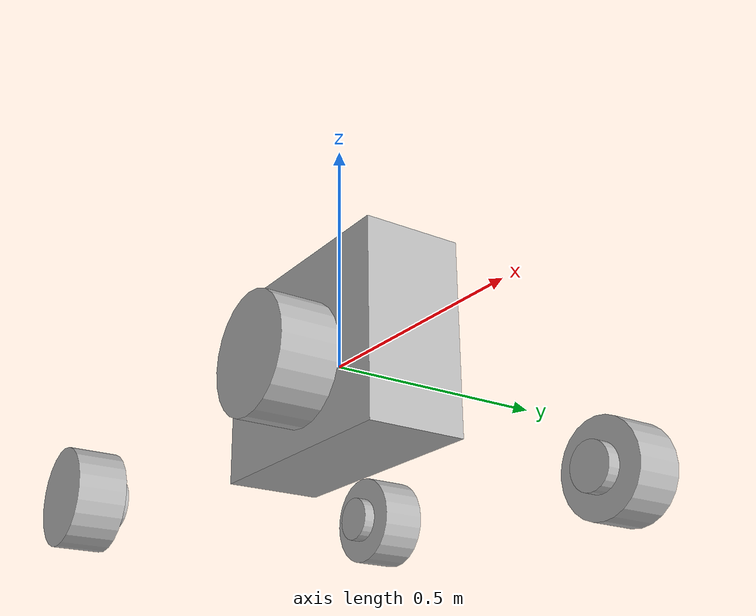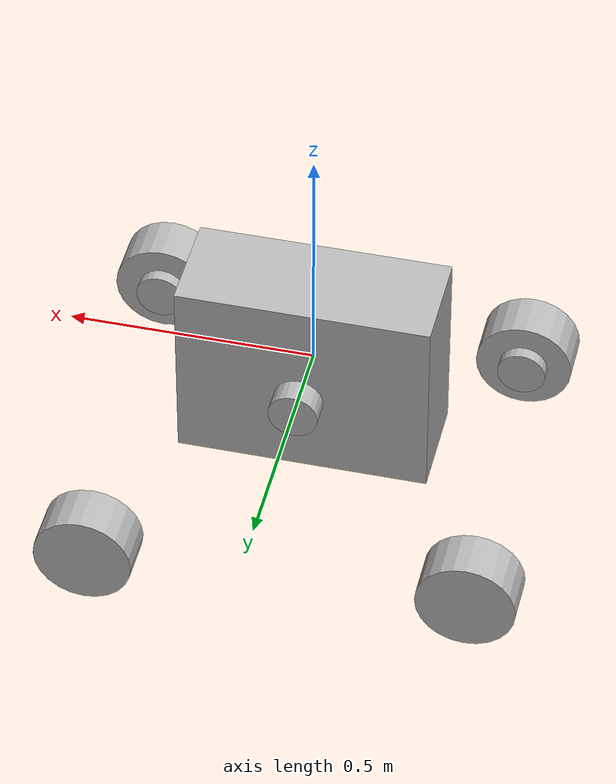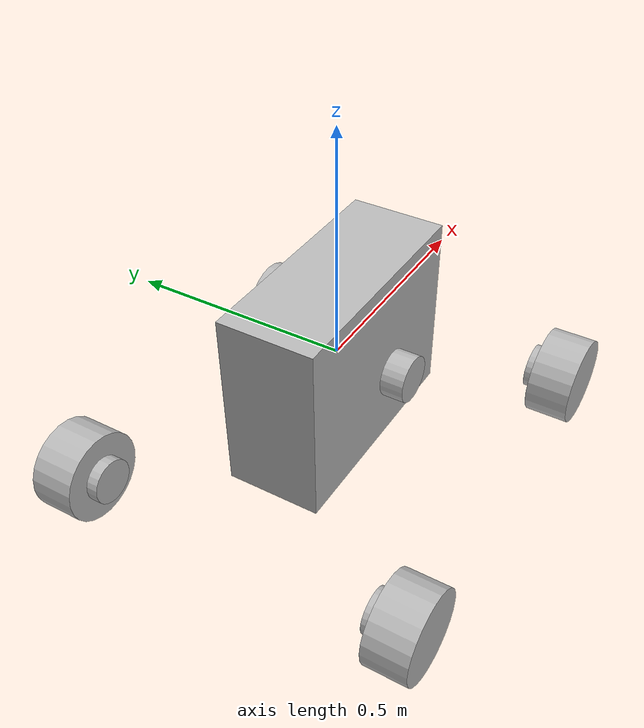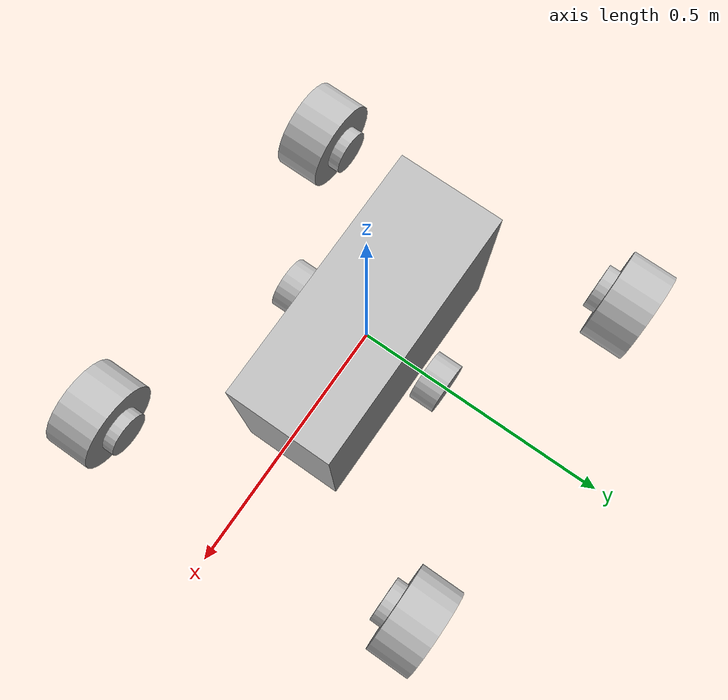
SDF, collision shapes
<sdf version='1.6'>
  <model name='plasticRover'>
    <link name='link_chassis'>
      <pose frame=''>0 0 0 0 -0 0</pose>
      <inertial>
        <pose frame=''>-0 0 0 0 -0 0</pose>
        <mass>3.32348</mass>
        <inertia>
          <ixx>0.0979082</ixx>
          <ixy>0.0003601</ixy>
          <ixz>-2.478e-05</ixz>
          <iyy>0.123</iyy>
          <iyz>3.66135e-05</iyz>
          <izz>0.115466</izz>
        </inertia>
      </inertial>
      <collision name='link_chassis_collision'>
        <pose frame=''>0 0 0 1.5708 -0 0</pose>
        <geometry>
          <box>
            <size>0.511 0.4 0.208</size>
          </box>
        </geometry>
      </collision>
      <collision name='link_chassis_fixed_joint_lump__link_left_bogie_stat_collision_collision_1'>
        <pose frame=''>0 0.15516 0 -1.5708 0 0</pose>
        <geometry>
          <cylinder>
            <length>0.05</length>
            <radius>0.05</radius>
          </cylinder>
        </geometry>
      </collision>
      <collision name='link_chassis_fixed_joint_lump__link_right_bogie_stat_collision_collision_2'>
        <pose frame=''>0 -0.15516 0 1.5708 -0 0</pose>
        <geometry>
          <cylinder>
            <length>0.05</length>
            <radius>0.05</radius>
          </cylinder>
        </geometry>
      </collision>
      <visual name='link_chassis_visual'>
        <pose frame=''>0 0 0 1.5708 -0 0</pose>
        <geometry>
          <box>
            <size>0.511 0.208 0.4</size>
          </box>
        </geometry>
      </visual>
      <visual name='link_chassis_fixed_joint_lump__camera_link_visual_1'>
        <pose frame=''>0.2555 0 0 0 -0 0</pose>
        <geometry>
          <box>
            <size>0.1 0.1 0.1</size>
          </box>
        </geometry>
        <material>
          <script>
            <uri>__default__</uri>
            <name>__default__</name>
          </script>
        </material>
      </visual>
      <visual name='link_chassis_fixed_joint_lump__link_left_bogie_stat_visual_visual_2'>
        <pose frame=''>0 0.15516 0 -1.5708 0 0</pose>
        <geometry>
          <cylinder>
            <length>0.05</length>
            <radius>0.05</radius>
          </cylinder>
        </geometry>
      </visual>
      <visual name='link_chassis_fixed_joint_lump__link_right_bogie_stat_visual_visual_3'>
        <pose frame=''>0 -0.15516 0 1.5708 -0 0</pose>
        <geometry>
          <cylinder>
            <length>0.05</length>
            <radius>0.05</radius>
          </cylinder>
        </geometry>
      </visual>
      <visual name='link_chassis_fixed_joint_lump__lidar_link_visual_4'>
        <pose frame=''>0.2275 0 0.104 0 -0 0</pose>
        <geometry>
          <box>
            <size>0.05 0.05 0.1</size>
          </box>
        </geometry>
        <material>
          <script>
            <uri>__default__</uri>
            <name>__default__</name>
          </script>
        </material>
      </visual>
      <velocity_decay/>
      <sensor name='camera1' type='camera'>
        <update_rate>30</update_rate>
        <camera name='head'>
          <horizontal_fov>1.39626</horizontal_fov>
          <image>
            <width>800</width>
            <height>800</height>
            <format>R8G8B8</format>
          </image>
          <clip>
            <near>0.02</near>
            <far>300</far>
          </clip>
          <noise>
            <type>gaussian</type>
            <mean>0</mean>
            <stddev>0.007</stddev>
          </noise>
        </camera>
        <plugin name='camera_controller' filename='libgazebo_ros_camera.so'>
          <alwaysOn>1</alwaysOn>
          <updateRate>0.0</updateRate>
          <cameraName>rover/camera1</cameraName>
          <imageTopicName>image_raw</imageTopicName>
          <cameraInfoTopicName>camera_info</cameraInfoTopicName>
          <frameName>camera_link</frameName>
          <hackBaseline>0.07</hackBaseline>
          <distortionK1>0.0</distortionK1>
          <distortionK2>0.0</distortionK2>
          <distortionK3>0.0</distortionK3>
          <distortionT1>0.0</distortionT1>
          <distortionT2>0.0</distortionT2>
        </plugin>
        <pose frame=''>0.2555 0 0 0 -0 0</pose>
      </sensor>
      <gravity>1</gravity>
      <velocity_decay/>
      <sensor name='head_hokuyo_sensor' type='ray'>
        <visualize>0</visualize>
        <update_rate>40</update_rate>
        <ray>
          <scan>
            <horizontal>
              <samples>720</samples>
              <resolution>1</resolution>
              <min_angle>-1.5708</min_angle>
              <max_angle>1.5708</max_angle>
            </horizontal>
          </scan>
          <range>
            <min>0.1</min>
            <max>30</max>
            <resolution>0.01</resolution>
          </range>
          <noise>
            <type>gaussian</type>
            <mean>0</mean>
            <stddev>0.01</stddev>
          </noise>
        </ray>
        <plugin name='gazebo_ros_head_hokuyo_controller' filename='libgazebo_ros_laser.so'>
          <topicName>/rover/laser/scan</topicName>
          <frameName>lidar_link</frameName>
        </plugin>
        <pose frame=''>0.2275 0 0.104 0 -0 0</pose>
      </sensor>
    </link>
    <link name='link_left_bogie_rot'>
      <pose frame=''>0 0.15516 0 1.5708 3e-06 3.14159</pose>
      <inertial>
        <pose frame=''>0.010327 -0.188386 0.161131 0 -0 0</pose>
        <mass>3.66525</mass>
        <inertia>
          <ixx>0.034829</ixx>
          <ixy>-0.0301798</ixy>
          <ixz>-0.00059891</ixz>
          <iyy>0.463453</iyy>
          <iyz>0.0106502</iyz>
          <izz>0.48004</izz>
        </inertia>
      </inertial>
      <collision name='link_left_bogie_rot_fixed_joint_lump__link_BLSWheel_collision_collision'>
        <pose frame=''>0.4006 -0.193183 0.17 0 0 -1.5708</pose>
        <geometry>
          <cylinder>
            <length>0.05</length>
            <radius>0.05</radius>
          </cylinder>
        </geometry>
      </collision>
      <collision name='link_left_bogie_rot_fixed_joint_lump__link_FLSWheel_collision_collision_1'>
        <pose frame=''>-0.37 -0.247057 0.17 0 0 -1.5708</pose>
        <geometry>
          <cylinder>
            <length>0.05</length>
            <radius>0.05</radius>
          </cylinder>
        </geometry>
      </collision>
      <visual name='link_left_bogie_rot_visual_visual'>
        <pose frame=''>0 0 0 0 -0 0</pose>
        <geometry>
          <mesh>
            <scale>0.001 0.001 0.001</scale>
            <uri>model://threedrover_description/MODELS/OWR_20_BOGIE_00_ASM_ROT.stl</uri>
          </mesh>
        </geometry>
      </visual>
      <visual name='link_left_bogie_rot_fixed_joint_lump__link_BLSWheel_visual_visual_1'>
        <pose frame=''>0.4006 -0.193183 0.17 0 0 -1.5708</pose>
        <geometry>
          <cylinder>
            <length>0.05</length>
            <radius>0.05</radius>
          </cylinder>
        </geometry>
      </visual>
      <visual name='link_left_bogie_rot_fixed_joint_lump__link_FLSWheel_visual_visual_2'>
        <pose frame=''>-0.37 -0.247057 0.17 0 0 -1.5708</pose>
        <geometry>
          <cylinder>
            <length>0.05</length>
            <radius>0.05</radius>
          </cylinder>
        </geometry>
      </visual>
    </link>
    <joint name='joint_bogie_left_rot' type='revolute'>
      <child>link_left_bogie_rot</child>
      <parent>link_right_bogie_rot</parent>
      <axis>
        <xyz>0 1 0</xyz>
        <limit>
          <lower>-1e+16</lower>
          <upper>1e+16</upper>
        </limit>
        <dynamics>
          <spring_reference>0</spring_reference>
          <spring_stiffness>0</spring_stiffness>
        </dynamics>
        <use_parent_model_frame>1</use_parent_model_frame>
      </axis>
    </joint>
    <link name='link_BLRWheel'>
      <pose frame=''>-0.400599 0.37516 -0.193184 -1.5708 -2e-06 -0</pose>
      <inertial>
        <pose frame=''>-0.003 -0.003 0.026 0 -0 0</pose>
        <mass>6.598</mass>
        <inertia>
          <ixx>0.031</ixx>
          <ixy>2.489e-07</ixy>
          <ixz>-1.24e-09</ixz>
          <iyy>0.031</iyy>
          <iyz>1.531e-08</iyz>
          <izz>0.051</izz>
        </inertia>
      </inertial>
      <collision name='link_BLRWheel_collision_collision'>
        <pose frame=''>0 0 0 0 -0 0</pose>
        <geometry>
          <cylinder>
            <length>0.098</length>
            <radius>0.1</radius>
          </cylinder>
        </geometry>
      </collision>
      <visual name='link_BLRWheel_visual_visual'>
        <pose frame=''>0 0 0 0 -0 0</pose>
        <geometry>
          <mesh>
            <scale>0.001 0.001 0.001</scale>
            <uri>model://threedrover_description/MODELS/OWR_20_DRIVE_00_ASM_ROT.stl</uri>
          </mesh>
        </geometry>
      </visual>
    </link>
    <joint name='wheel_BL' type='revolute'>
      <child>link_BLRWheel</child>
      <parent>link_left_bogie_rot</parent>
      <axis>
        <xyz>0 1 0</xyz>
        <limit>
          <lower>-1e+16</lower>
          <upper>1e+16</upper>
        </limit>
        <dynamics>
          <spring_reference>0</spring_reference>
          <spring_stiffness>0</spring_stiffness>
        </dynamics>
        <use_parent_model_frame>1</use_parent_model_frame>
      </axis>
    </joint>
    <link name='link_FLRWheel'>
      <pose frame=''>0.370001 0.37516 -0.247056 -1.5708 -2e-06 -0</pose>
      <inertial>
        <pose frame=''>-0.003 -0.003 0.026 0 -0 0</pose>
        <mass>6.598</mass>
        <inertia>
          <ixx>0.031</ixx>
          <ixy>2.489e-07</ixy>
          <ixz>-1.24e-09</ixz>
          <iyy>0.031</iyy>
          <iyz>1.531e-08</iyz>
          <izz>0.051</izz>
        </inertia>
      </inertial>
      <collision name='link_FLRWheel_collision_collision'>
        <pose frame=''>0 0 0 0 -0 0</pose>
        <geometry>
          <cylinder>
            <length>0.098</length>
            <radius>0.1</radius>
          </cylinder>
        </geometry>
      </collision>
      <visual name='link_FLRWheel_visual_visual'>
        <pose frame=''>0 0 0 0 -0 0</pose>
        <geometry>
          <mesh>
            <scale>0.001 0.001 0.001</scale>
            <uri>model://threedrover_description/MODELS/OWR_20_DRIVE_00_ASM_ROT.stl</uri>
          </mesh>
        </geometry>
      </visual>
    </link>
    <joint name='wheel_FL' type='revolute'>
      <child>link_FLRWheel</child>
      <parent>link_left_bogie_rot</parent>
      <axis>
        <xyz>0 1 0</xyz>
        <limit>
          <lower>-1e+16</lower>
          <upper>1e+16</upper>
        </limit>
        <dynamics>
          <spring_reference>0</spring_reference>
          <spring_stiffness>0</spring_stiffness>
        </dynamics>
        <use_parent_model_frame>1</use_parent_model_frame>
      </axis>
    </joint>
    <link name='link_right_bogie_rot'>
      <pose frame=''>0 -0.15516 0 1.5708 -0 0</pose>
      <inertial>
        <pose frame=''>0.014901 -0.183813 0.161131 0 -0 0</pose>
        <mass>3.66525</mass>
        <inertia>
          <ixx>0.0336884</ixx>
          <ixy>-0.0296545</ixy>
          <ixz>-0.000963609</ixz>
          <iyy>0.463543</iyy>
          <iyz>0.0108396</iyz>
          <izz>0.478989</izz>
        </inertia>
      </inertial>
      <collision name='link_right_bogie_rot_fixed_joint_lump__link_BRSWheel_collision_collision'>
        <pose frame=''>-0.37 -0.247057 0.17 0 -0 1.5708</pose>
        <geometry>
          <cylinder>
            <length>0.05</length>
            <radius>0.05</radius>
          </cylinder>
        </geometry>
      </collision>
      <collision name='link_right_bogie_rot_fixed_joint_lump__link_FRSWheel_collision_collision_1'>
        <pose frame=''>0.4006 -0.193183 0.17 0 -0 1.5708</pose>
        <geometry>
          <cylinder>
            <length>0.05</length>
            <radius>0.05</radius>
          </cylinder>
        </geometry>
      </collision>
      <visual name='link_right_bogie_rot_visual_visual'>
        <pose frame=''>0 0 0 0 -0 0</pose>
        <geometry>
          <mesh>
            <scale>0.001 0.001 0.001</scale>
            <uri>model://threedrover_description/MODELS/OWR_20_BOGIE_00_ASM_ROT.stl</uri>
          </mesh>
        </geometry>
      </visual>
      <visual name='link_right_bogie_rot_fixed_joint_lump__link_BRSWheel_visual_visual_1'>
        <pose frame=''>-0.37 -0.247057 0.17 0 -0 1.5708</pose>
        <geometry>
          <cylinder>
            <length>0.05</length>
            <radius>0.05</radius>
          </cylinder>
        </geometry>
      </visual>
      <visual name='link_right_bogie_rot_fixed_joint_lump__link_FRSWheel_visual_visual_2'>
        <pose frame=''>0.4006 -0.193183 0.17 0 -0 1.5708</pose>
        <geometry>
          <cylinder>
            <length>0.05</length>
            <radius>0.05</radius>
          </cylinder>
        </geometry>
      </visual>
    </link>
    <joint name='joint_bogie_right_rot' type='revolute'>
      <child>link_right_bogie_rot</child>
      <parent>link_chassis</parent>
      <axis>
        <xyz>0 -1 0</xyz>
        <limit>
          <lower>-1e+16</lower>
          <upper>1e+16</upper>
        </limit>
        <dynamics>
          <spring_reference>0</spring_reference>
          <spring_stiffness>0</spring_stiffness>
        </dynamics>
        <use_parent_model_frame>1</use_parent_model_frame>
      </axis>
    </joint>
    <link name='link_BRRWheel'>
      <pose frame=''>-0.37 -0.37516 -0.247057 -1.5708 -1e-06 3.14159</pose>
      <inertial>
        <pose frame=''>-0.003 -0.003 0.026 0 -0 0</pose>
        <mass>6.598</mass>
        <inertia>
          <ixx>0.031</ixx>
          <ixy>2.489e-07</ixy>
          <ixz>-1.24e-09</ixz>
          <iyy>0.031</iyy>
          <iyz>1.531e-08</iyz>
          <izz>0.051</izz>
        </inertia>
      </inertial>
      <collision name='link_BRRWheel_collision_collision'>
        <pose frame=''>0 0 0 0 -0 0</pose>
        <geometry>
          <cylinder>
            <length>0.098</length>
            <radius>0.1</radius>
          </cylinder>
        </geometry>
      </collision>
      <visual name='link_BRRWheel_visual_visual'>
        <pose frame=''>0 0 0 0 -0 0</pose>
        <geometry>
          <mesh>
            <scale>0.001 0.001 0.001</scale>
            <uri>model://threedrover_description/MODELS/OWR_20_DRIVE_00_ASM_ROT.stl</uri>
          </mesh>
        </geometry>
      </visual>
    </link>
    <joint name='wheel_BR' type='revolute'>
      <child>link_BRRWheel</child>
      <parent>link_right_bogie_rot</parent>
      <axis>
        <xyz>0 -1 0</xyz>
        <limit>
          <lower>-1e+16</lower>
          <upper>1e+16</upper>
        </limit>
        <dynamics>
          <spring_reference>0</spring_reference>
          <spring_stiffness>0</spring_stiffness>
        </dynamics>
        <use_parent_model_frame>1</use_parent_model_frame>
      </axis>
    </joint>
    <link name='link_FRRWheel'>
      <pose frame=''>0.4006 -0.37516 -0.193183 -1.5708 -1e-06 3.14159</pose>
      <inertial>
        <pose frame=''>-0.003 -0.003 0.026 0 -0 0</pose>
        <mass>6.598</mass>
        <inertia>
          <ixx>0.031</ixx>
          <ixy>2.489e-07</ixy>
          <ixz>-1.24e-09</ixz>
          <iyy>0.031</iyy>
          <iyz>1.531e-08</iyz>
          <izz>0.051</izz>
        </inertia>
      </inertial>
      <collision name='link_FRRWheel_collision_collision'>
        <pose frame=''>0 0 0 0 -0 0</pose>
        <geometry>
          <cylinder>
            <length>0.098</length>
            <radius>0.1</radius>
          </cylinder>
        </geometry>
      </collision>
      <visual name='link_FRRWheel_visual_visual'>
        <pose frame=''>0 0 0 0 -0 0</pose>
        <geometry>
          <mesh>
            <scale>0.001 0.001 0.001</scale>
            <uri>model://threedrover_description/MODELS/OWR_20_DRIVE_00_ASM_ROT.stl</uri>
          </mesh>
        </geometry>
      </visual>
    </link>
    <joint name='wheel_FR' type='revolute'>
      <child>link_FRRWheel</child>
      <parent>link_right_bogie_rot</parent>
      <axis>
        <xyz>0 -1 0</xyz>
        <limit>
          <lower>-1e+16</lower>
          <upper>1e+16</upper>
        </limit>
        <dynamics>
          <spring_reference>0</spring_reference>
          <spring_stiffness>0</spring_stiffness>
        </dynamics>
        <use_parent_model_frame>1</use_parent_model_frame>
      </axis>
    </joint>
    <static>0</static>
    <plugin name='ss_drive' filename='libgazebo_ros_skid_steer_drive.so'>
      <updateRate>100.0</updateRate>
      <robotNamespace>/</robotNamespace>
      <leftFrontJoint>wheel_FL</leftFrontJoint>
      <rightFrontJoint>wheel_FR</rightFrontJoint>
      <leftRearJoint>wheel_BL</leftRearJoint>
      <rightRearJoint>wheel_BR</rightRearJoint>
      <wheelSeparation>0.77</wheelSeparation>
      <wheelDiameter>0.2</wheelDiameter>
      <robotBaseFrame>link_chassis</robotBaseFrame>
      <torque>10</torque>
      <topicName>cmd_vel</topicName>
      <broadcastTF>0</broadcastTF>
    </plugin>
  </model>
</sdf>
